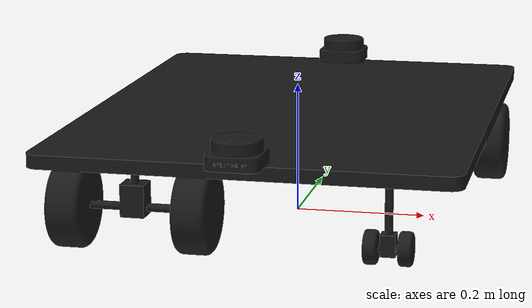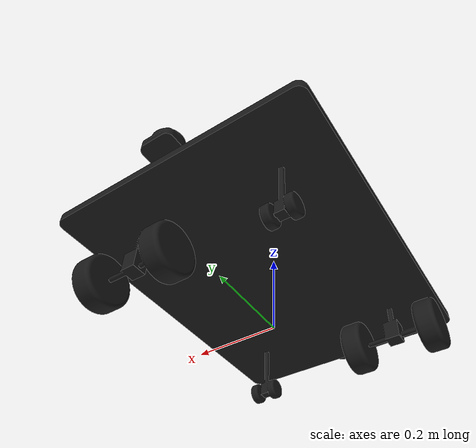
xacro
<?xml version="1.0" ?>
<robot name="ats" xmlns:xacro="http://www.ros.org/wiki/xacro">

<xacro:include filename="$(find ats_description)/urdf/materials.xacro" />
<xacro:include filename="$(find ats_description)/urdf/ats.trans" />
<xacro:include filename="$(find ats_description)/urdf/ats.gazebo" />

<link name="dummy">
</link>

<link name="base_link">
  <inertial>
    <origin xyz="-3.538092681791124e-07 6.069818771009429e-17 0.15800176904634042" rpy="0 0 0"/>
    <mass value="75.27904133696734"/>
    <inertia ixx="3.91195" iyy="2.314619" izz="6.221552" ixy="7e-06" iyz="-0.0" ixz="-0.0"/>
  </inertial>
  <visual>
    <origin xyz="0 0 0" rpy="0 0 0"/>
    <geometry>
      <mesh filename="package://ats_description/meshes/base_link.stl" scale="0.001 0.001 0.001"/>
    </geometry>
    <material name="_"/>
  </visual>
  <collision>
    <origin xyz="0 0 0" rpy="0 0 0"/>
    <geometry>
      <mesh filename="package://ats_description/meshes/base_link.stl" scale="0.001 0.001 0.001"/>
    </geometry>
  </collision>
</link>

<link name="in_wheel_1_1">
  <inertial>
    <origin xyz="-1.970645868709653e-15 4.551914400963142e-15 -0.08817479999689995" rpy="0 0 0"/>
    <mass value="10.665145079824297"/>
    <inertia ixx="0.020507" iyy="0.099578" izz="0.099279" ixy="0.0" iyz="0.0" ixz="0.0"/>
  </inertial>
  <visual>
    <origin xyz="-0.18526 -0.26 -0.153" rpy="0 0 0"/>
    <geometry>
      <mesh filename="package://ats_description/meshes/in_wheel_1_1.stl" scale="0.001 0.001 0.001"/>
    </geometry>
    <material name="_"/>
  </visual>
  <collision>
    <origin xyz="-0.18526 -0.26 -0.153" rpy="0 0 0"/>
    <geometry>
      <mesh filename="package://ats_description/meshes/in_wheel_1_1.stl" scale="0.001 0.001 0.001"/>
    </geometry>
  </collision>
</link>

<link name="caster_1_1">
  <inertial>
    <origin xyz="-1.4481257859522145e-10 -7.549516567451064e-15 -0.11856968433609011" rpy="0 0 0"/>
    <mass value="0.8149371127533965"/>
    <inertia ixx="0.000743" iyy="0.001043" izz="0.00049" ixy="-0.0" iyz="-0.0" ixz="-0.0"/>
  </inertial>
  <visual>
    <origin xyz="0.17926 -0.26 -0.153" rpy="0 0 0"/>
    <geometry>
      <mesh filename="package://ats_description/meshes/caster_1_1.stl" scale="0.001 0.001 0.001"/>
    </geometry>
    <material name="_"/>
  </visual>
  <collision>
    <origin xyz="0.17926 -0.26 -0.153" rpy="0 0 0"/>
    <geometry>
      <mesh filename="package://ats_description/meshes/caster_1_1.stl" scale="0.001 0.001 0.001"/>
    </geometry>
  </collision>
</link>

<link name="in_wheel_2_1">
  <inertial>
    <origin xyz="-1.1379786002407855e-15 2.6645352591003757e-15 -0.08817479999689992" rpy="0 0 0"/>
    <mass value="10.665145079824297"/>
    <inertia ixx="0.020507" iyy="0.099578" izz="0.099279" ixy="0.0" iyz="0.0" ixz="0.0"/>
  </inertial>
  <visual>
    <origin xyz="0.18526 0.26 -0.153" rpy="0 0 0"/>
    <geometry>
      <mesh filename="package://ats_description/meshes/in_wheel_2_1.stl" scale="0.001 0.001 0.001"/>
    </geometry>
    <material name="_"/>
  </visual>
  <collision>
    <origin xyz="0.18526 0.26 -0.153" rpy="0 0 0"/>
    <geometry>
      <mesh filename="package://ats_description/meshes/in_wheel_2_1.stl" scale="0.001 0.001 0.001"/>
    </geometry>
  </collision>
</link>

<link name="caster_2_1">
  <inertial>
    <origin xyz="-1.448128561509776e-10 -7.494005416219807e-15 -0.11856968433609011" rpy="0 0 0"/>
    <mass value="0.8149371127533965"/>
    <inertia ixx="0.000743" iyy="0.001043" izz="0.00049" ixy="-0.0" iyz="-0.0" ixz="-0.0"/>
  </inertial>
  <visual>
    <origin xyz="-0.18526 0.26 -0.153" rpy="0 0 0"/>
    <geometry>
      <mesh filename="package://ats_description/meshes/caster_2_1.stl" scale="0.001 0.001 0.001"/>
    </geometry>
    <material name="_"/>
  </visual>
  <collision>
    <origin xyz="-0.18526 0.26 -0.153" rpy="0 0 0"/>
    <geometry>
      <mesh filename="package://ats_description/meshes/caster_2_1.stl" scale="0.001 0.001 0.001"/>
    </geometry>
  </collision>
</link>

<link name="rplidar_s2_1_1">
  <inertial>
    <origin xyz="-5.069135638987133e-07 -1.9284390547880115e-05 0.017499881114527827" rpy="0 0 0"/>
    <mass value="1.4755797019735104"/>
    <inertia ixx="0.000778" iyy="0.000779" izz="0.001203" ixy="0.0" iyz="-0.0" ixz="-0.0"/>
  </inertial>
  <visual>
    <origin xyz="0.0 -0.395 -0.168" rpy="0 0 0"/>
    <geometry>
      <mesh filename="package://ats_description/meshes/rplidar_s2_1_1.stl" scale="0.001 0.001 0.001"/>
    </geometry>
    <material name="_"/>
  </visual>
  <collision>
    <origin xyz="0.0 -0.395 -0.168" rpy="0 0 0"/>
    <geometry>
      <mesh filename="package://ats_description/meshes/rplidar_s2_1_1.stl" scale="0.001 0.001 0.001"/>
    </geometry>
  </collision>
</link>

<link name="rplidar_s2_2_1">
  <inertial>
    <origin xyz="5.069135636855506e-07 1.9284390547824604e-05 0.0174998811145278" rpy="0 0 0"/>
    <mass value="1.4755797019735104"/>
    <inertia ixx="0.000778" iyy="0.000779" izz="0.001203" ixy="0.0" iyz="0.0" ixz="0.0"/>
  </inertial>
  <visual>
    <origin xyz="0.0 0.395 -0.168" rpy="0 0 0"/>
    <geometry>
      <mesh filename="package://ats_description/meshes/rplidar_s2_2_1.stl" scale="0.001 0.001 0.001"/>
    </geometry>
    <material name="_"/>
  </visual>
  <collision>
    <origin xyz="0.0 0.395 -0.168" rpy="0 0 0"/>
    <geometry>
      <mesh filename="package://ats_description/meshes/rplidar_s2_2_1.stl" scale="0.001 0.001 0.001"/>
    </geometry>
  </collision>
</link>

<joint name="rigidity1" type="fixed">
  <origin xyz="0.18526 0.26 0.153" rpy="0 0 0"/>
  <parent link="base_link"/>
  <child link="in_wheel_1_1"/>
</joint>

<joint name="rigidity2" type="fixed">
  <origin xyz="-0.17926 0.26 0.153" rpy="0 0 0"/>
  <parent link="base_link"/>
  <child link="caster_1_1"/>
</joint>

<joint name="rigidity3" type="fixed">
  <origin xyz="-0.18526 -0.26 0.153" rpy="0 0 0"/>
  <parent link="base_link"/>
  <child link="in_wheel_2_1"/>
</joint>

<joint name="rigidity4" type="fixed">
  <origin xyz="0.18526 -0.26 0.153" rpy="0 0 0"/>
  <parent link="base_link"/>
  <child link="caster_2_1"/>
</joint>

<joint name="rigidity9" type="fixed">
  <origin xyz="0.0 0.395 0.168" rpy="0 0 0"/>
  <parent link="base_link"/>
  <child link="rplidar_s2_1_1"/>
</joint>

<joint name="rigidity10" type="fixed">
  <origin xyz="0.0 -0.395 0.168" rpy="0 0 0"/>
  <parent link="base_link"/>
  <child link="rplidar_s2_2_1"/>
</joint>

<joint name="dummy_joint" type="fixed">
  <parent link="dummy"/>
  <child link="base_link"/>
</joint>

</robot>

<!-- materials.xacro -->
<robot name="ats" xmlns:xacro="http://www.ros.org/wiki/xacro" >

<material name="silver_default">
  <color rgba="0.700 0.700 0.700 1.000"/>
</material>
<material name="_">
  <color rgba="0.09803921568627451 0.09803921568627451 0.09803921568627451 1.0"/>
</material>

</robot>

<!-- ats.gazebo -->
<robot name="ats" xmlns:xacro="http://www.ros.org/wiki/xacro" >

<xacro:property name="body_color" value="Gazebo/Silver" />

<gazebo>
  <plugin name="control" filename="libgazebo_ros_control.so"/>
</gazebo>
<gazebo reference="base_link">
  <material>${body_color}</material>
  <mu1>0.2</mu1>
  <mu2>0.2</mu2>
  <selfCollide>true</selfCollide>
  <gravity>true</gravity>
</gazebo>

<gazebo reference="in_wheel_1_1">
  <material>${body_color}</material>
  <mu1>0.2</mu1>
  <mu2>0.2</mu2>
  <selfCollide>true</selfCollide>
</gazebo>

<gazebo reference="caster_1_1">
  <material>${body_color}</material>
  <mu1>0.2</mu1>
  <mu2>0.2</mu2>
  <selfCollide>true</selfCollide>
</gazebo>

<gazebo reference="in_wheel_2_1">
  <material>${body_color}</material>
  <mu1>0.2</mu1>
  <mu2>0.2</mu2>
  <selfCollide>true</selfCollide>
</gazebo>

<gazebo reference="caster_2_1">
  <material>${body_color}</material>
  <mu1>0.2</mu1>
  <mu2>0.2</mu2>
  <selfCollide>true</selfCollide>
</gazebo>

<gazebo reference="rplidar_s2_1_1">
  <material>${body_color}</material>
  <mu1>0.2</mu1>
  <mu2>0.2</mu2>
  <selfCollide>true</selfCollide>
</gazebo>

<gazebo reference="rplidar_s2_2_1">
  <material>${body_color}</material>
  <mu1>0.2</mu1>
  <mu2>0.2</mu2>
  <selfCollide>true</selfCollide>
</gazebo>

</robot>
